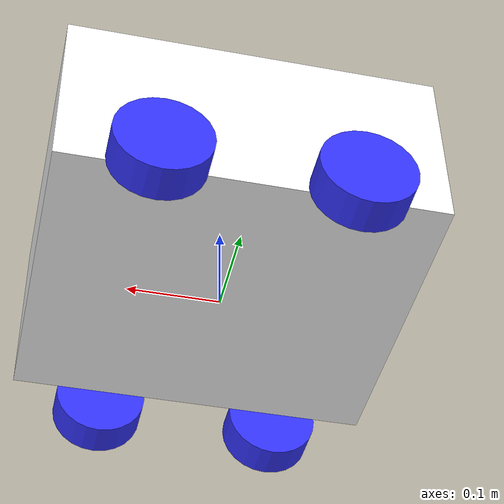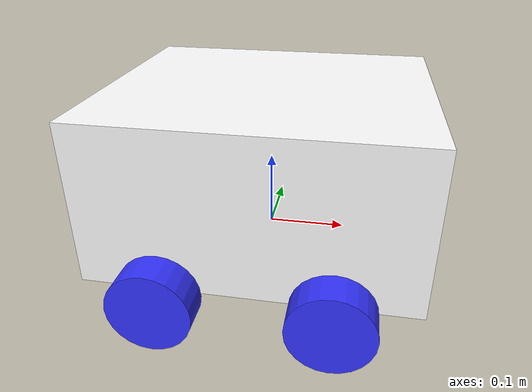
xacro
<?xml version="1.0"?>
<robot xmlns:xacro="http://www.ros.org/wiki/xacro">

    <xacro:include filename="inertial_macros.xacro"/>

    <material name="white">
        <color rgba="1 1 1 1" />
    </material>

    <material name="orange">
        <color rgba="1 0.3 0.1 1"/>
    </material>

    <material name="blue">
        <color rgba="0.2 0.2 1 1"/>
    </material>

    <material name="black">
        <color rgba="0 0 0 1"/>
    </material>

    <!-- BASE LINK -->
    <link name="base_link"/>

    <!-- CHASSIS LINK -->
    <joint name="chassis_joint" type="fixed">
        <parent link="base_link"/>
        <child link="chassis"/>
        <origin xyz="0 0 0"/>
    </joint>

    <link name="chassis">
        <visual>
            <origin xyz="0 0 0.1"/>
            <geometry>
                <box size="0.4 0.35 0.2"/>
            </geometry>
            <material name="white"/>
        </visual>
        <collision>
            <origin xyz="0 0 0.1"/>
            <geometry>
                <box size="0.4 0.35 0.2"/>
            </geometry>
        </collision>
        <xacro:inertial_box mass="1.0" x="0.4" y="0.35" z="0.2">
            <origin xyz="0 0 0.1" rpy="0 0 0"/>
        </xacro:inertial_box>
    </link>

    <!-- LEFT FRONT WHEEL LINK -->
    <joint name="left_front_wheel_joint" type="continuous">
        <parent link="base_link"/>
        <child link="left_front_wheel"/>
        <origin xyz="-0.1 0.2 0" rpy="-${pi/2} 0 0"/>
        <axis xyz="0 0 1"/>
    </joint>

    <link name="left_front_wheel">
        <visual>
            <geometry>
                <cylinder radius="0.05" length="0.04"/>
            </geometry>
            <material name="blue"/>
        </visual>
        <collision>
            <geometry>
                <cylinder radius="0.05" length="0.04"/>
            </geometry>
        </collision>
        <xacro:inertial_cylinder mass="0.2" length="0.04" radius="0.05">
            <origin xyz="0 0 0" rpy="0 0 0"/>
        </xacro:inertial_cylinder>
    </link>

    <!-- LEFT REAR WHEEL LINK -->
    <joint name="left_rear_wheel_joint" type="continuous">
        <parent link="base_link"/>
        <child link="left_rear_wheel"/>
        <origin xyz="-0.1 -0.2 0" rpy="-${pi/2} 0 0"/>
        <axis xyz="0 0 1"/>
    </joint>

    <link name="left_rear_wheel">
        <visual>
            <geometry>
                <cylinder radius="0.05" length="0.04"/>
            </geometry>
            <material name="blue"/>
        </visual>
        <collision>
            <geometry>
                <cylinder radius="0.05" length="0.04"/>
            </geometry>
        </collision>
        <xacro:inertial_cylinder mass="0.2" length="0.04" radius="0.05">
            <origin xyz="0 0 0" rpy="0 0 0"/>
        </xacro:inertial_cylinder>
    </link>

    <!-- RIGHT FRONT WHEEL LINK -->
    <joint name="right_front_wheel_joint" type="continuous">
        <parent link="base_link"/>
        <child link="right_front_wheel"/>
        <origin xyz="0.1 0.2 0" rpy="${pi/2} 0 0"/>
        <axis xyz="0 0 1"/>
    </joint>

    <link name="right_front_wheel">
        <visual>
            <geometry>
                <cylinder radius="0.05" length="0.04"/>
            </geometry>
            <material name="blue"/>
        </visual>
        <collision>
            <geometry>
                <cylinder radius="0.05" length="0.04"/>
            </geometry>
        </collision>
        <xacro:inertial_cylinder mass="0.2" length="0.04" radius="0.05">
            <origin xyz="0 0 0" rpy="0 0 0"/>
        </xacro:inertial_cylinder>
    </link>

    <!-- RIGHT REAR WHEEL LINK -->
    <joint name="right_rear_wheel_joint" type="continuous">
        <parent link="base_link"/>
        <child link="right_rear_wheel"/>
        <origin xyz="0.1 -0.2 0" rpy="${pi/2} 0 0"/>
        <axis xyz="0 0 1"/>
    </joint>

    <link name="right_rear_wheel">
        <visual>
            <geometry>
                <cylinder radius="0.05" length="0.04"/>
            </geometry>
            <material name="blue"/>
        </visual>
        <collision>
            <geometry>
                <cylinder radius="0.05" length="0.04"/>
            </geometry>
        </collision>
        <xacro:inertial_cylinder mass="0.2" length="0.04" radius="0.05">
            <origin xyz="0 0 0" rpy="0 0 0"/>
        </xacro:inertial_cylinder>
    </link>
</robot>
